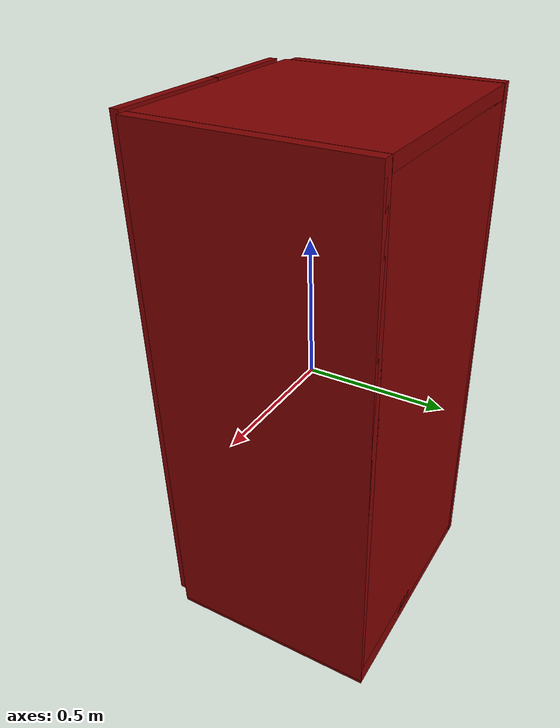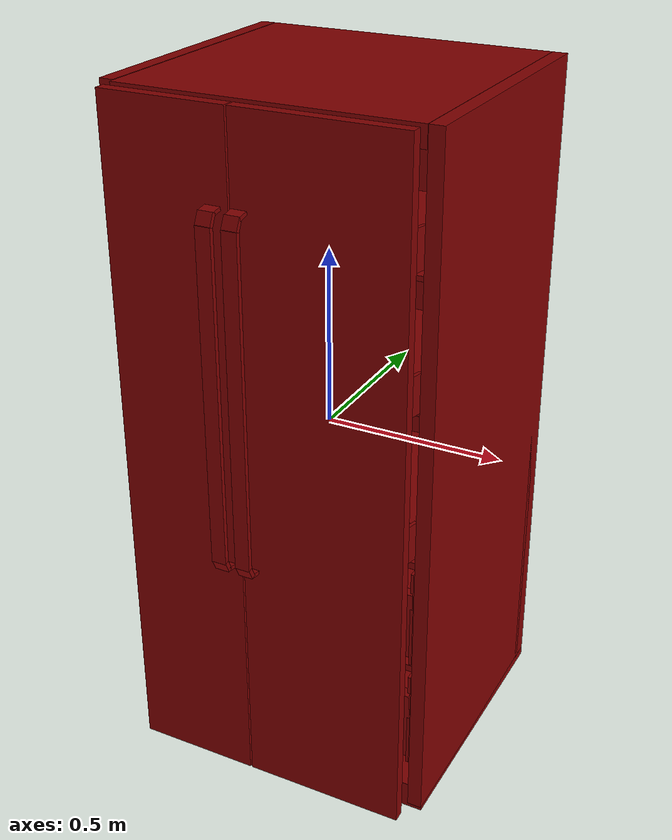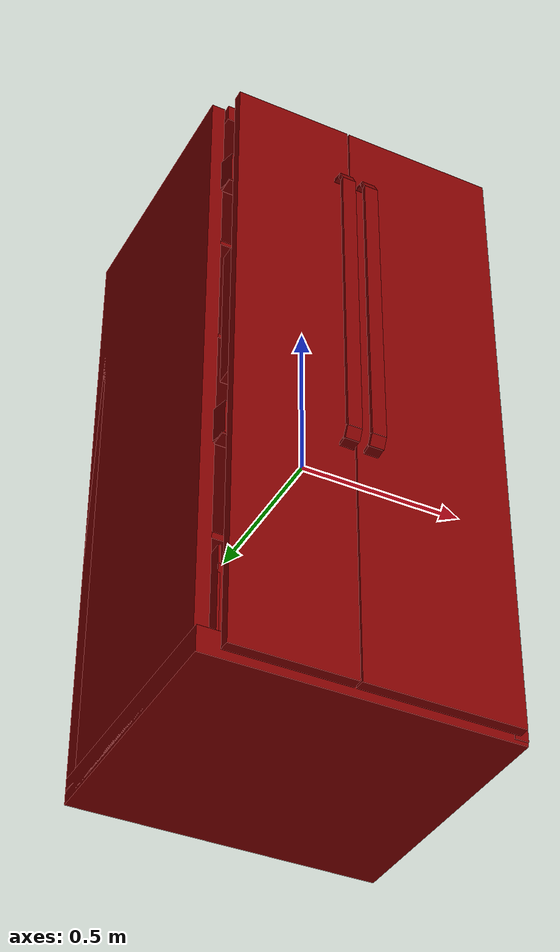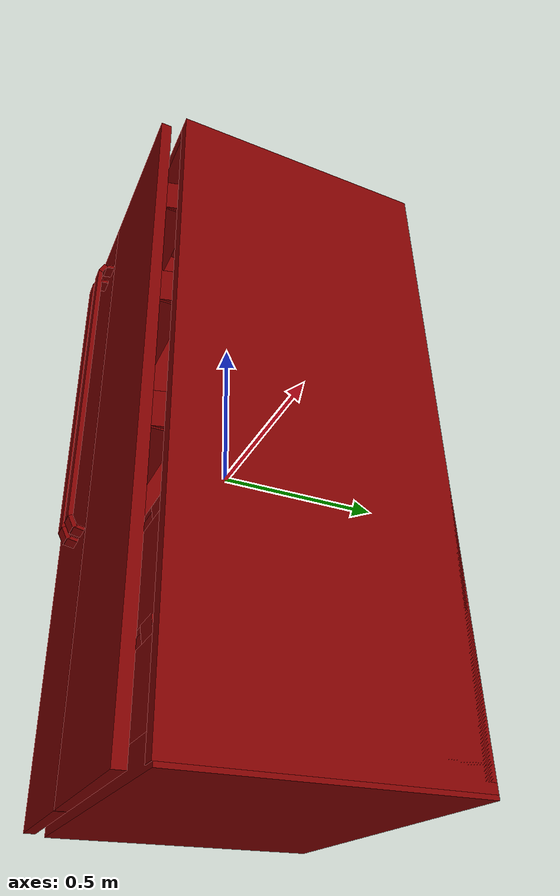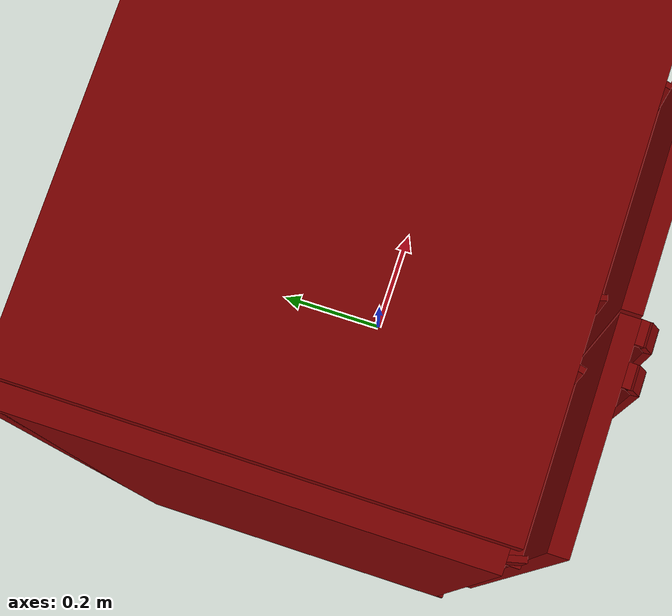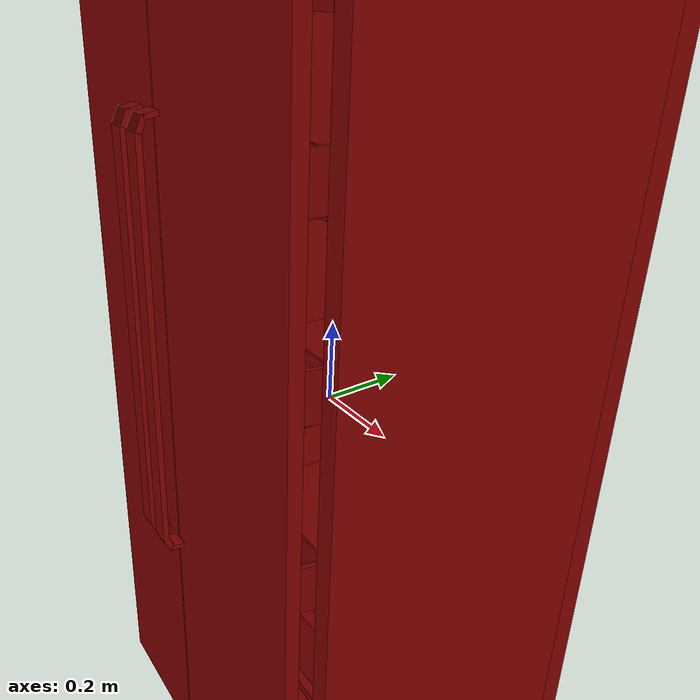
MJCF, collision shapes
<?xml version='1.0' encoding='UTF-8'?>
<mujoco model="model">
  <option timestep="0.002" gravity="0.0 0.0 -9.81"/>
  <compiler angle="radian"/>
  <asset>
    <mesh file="visuals/freezer_door.obj" name="freezer_door_vis"/>
    <mesh file="visuals/freezer_door_Clear.obj" name="freezer_door_Clear_vis"/>
    <mesh file="visuals/freezer_drawer0.obj" name="freezer_drawer0_vis"/>
    <mesh file="visuals/fridge_door.obj" name="fridge_door_vis"/>
    <mesh file="visuals/fridge_door_Clear.obj" name="fridge_door_Clear_vis"/>
    <mesh file="visuals/fridge_drawer0.obj" name="fridge_drawer0_vis"/>
    <mesh file="visuals/fridge_drawer1.obj" name="fridge_drawer1_vis"/>
    <mesh file="visuals/Body001.obj" name="Body001_vis"/>
    <mesh file="visuals/Body001_Clear.obj" name="Body001_Clear_vis"/>
    <texture file="visuals/T_BC001.png" name="Body001_material" type="2d"/>
    <material name="Body001_material" rgba="1 1 1 1.0" texture="Body001_material" shininess="0.1" specular="5"/>
    <texture file="visuals/T_BC001.png" name="freezer_door_material" type="2d"/>
    <material name="freezer_door_material" rgba="1 1 1 1.0" texture="freezer_door_material" shininess="0.1" specular="5"/>
    <material name="freezer_door_Clear_material" rgba="0.5049749612808228 0.5049749612808228 0.5049749612808228 0.699999988079071" shininess="0.4472135901451111" specular="0.3103448502657381"/>
    <texture file="visuals/T_BC001.png" name="freezer_drawer0_material" type="2d"/>
    <material name="freezer_drawer0_material" rgba="1 1 1 1.0" texture="freezer_drawer0_material" shininess="0.1" specular="5"/>
    <texture file="visuals/T_BC001.png" name="fridge_door_material" type="2d"/>
    <material name="fridge_door_material" rgba="1 1 1 1.0" texture="fridge_door_material" shininess="0.1" specular="5"/>
    <material name="fridge_door_Clear_material" rgba="0.5049749612808228 0.5049749612808228 0.5049749612808228 0.699999988079071" shininess="0.4472135901451111" specular="0.3103448502657381"/>
    <material name="fridge_drawer0_material" rgba="0.5049749612808228 0.5049749612808228 0.5049749612808228 0.699999988079071" shininess="0.1" specular="1"/>
    <material name="fridge_drawer1_material" rgba="0.5049749612808228 0.5049749612808228 0.5049749612808228 0.699999988079071" shininess="0.1" specular="1"/>
    <material name="Body001_Clear_material" rgba="0.5049749612808228 0.5049749612808228 0.5049749612808228 0.699999988079071" shininess="0.4472135901451111" specular="0.3103448502657381"/>
  </asset>
  <default>
    <default class="visual">
      <geom conaffinity="0" contype="0" group="1" type="mesh"/>
    </default>
    <default class="collision">
      <geom group="0" rgba="0.5 0 0 0.5"/>
    </default>
    <default class="spawn">
      <geom group="0" rgba="1 1 1 0.5" contype="0" conaffinity="0"/>
      <site group="0" rgba="1 1 1 0.5"/>
    </default>
    <default class="region">
      <geom group="1" conaffinity="0" contype="0" rgba="0 1 0 0"/>
    </default>
  </default>
  <worldbody>
    <body>
      <body name="object">
        <geom mesh="Body001_vis" type="mesh" solimp="0.998 0.998 0.001" solref="0.001 1" friction="0.95 0.3 0.1" class="visual" material="Body001_material"/>
        <geom class="collision" type="box" pos="-0.4336509108543396 0.07142437249422073 0.005860745906829834" size="0.01959938555955887 0.3851611018180847 0.951562225818634" quat="1.0 0.0 0.0 0.0"/>
        <geom class="collision" type="box" pos="0.0008711601258255541 0.06280471384525299 0.9293645024299622" size="0.4111725389957428 0.39378076791763306 0.028058471158146858" quat="1.0 0.0 0.0 0.0"/>
        <geom class="collision" type="box" pos="0.4333297610282898 0.06280471384525299 0.005860745906829834" size="0.01992054469883442 0.39378076791763306 0.951562225818634" quat="1.0 0.0 0.0 0.0"/>
        <geom class="collision" type="box" pos="0.18989431858062744 0.07100318372249603 -0.21668130159378052" size="0.2254139482975006 0.3264940679073334 0.009871868416666985" quat="1.0 0.0 0.0 0.0"/>
        <geom class="collision" type="box" pos="0.18992270529270172 0.07178407907485962 -0.5463895201683044" size="0.22557882964611053 0.32727494835853577 0.009871752001345158" quat="1.0 0.0 0.0 0.0"/>
        <geom class="collision" type="box" pos="0.0 0.06406276673078537 -0.9194051623344421" size="0.4532502591609955 0.3925227224826813 0.038017868995666504" quat="1.0 0.0 0.0 0.0"/>
        <geom class="collision" type="box" pos="0.0 0.4266170263290405 -0.004701931495219469" size="0.4532502591609955 0.029968474060297012 0.9156023263931274" quat="1.0 0.0 0.0 0.0"/>
        <geom class="collision" type="box" pos="0.19020572304725647 0.10726486891508102 0.5469508767127991" size="0.2314845770597458 0.2994402348995209 0.00704612722620368" quat="1.0 0.0 0.0 0.0"/>
        <geom class="collision" type="box" pos="0.19020572304725647 0.10726486891508102 0.18934525549411774" size="0.2314845770597458 0.2994402348995209 0.0070462035946547985" quat="1.0 0.0 0.0 0.0"/>
        <geom class="collision" type="box" pos="-0.06068806350231171 0.04241957142949104 0.005115657113492489" size="0.023796552792191505 0.3735535442829132 0.903842031955719" quat="1.0 0.0 0.0 0.0"/>
        <geom class="collision" type="box" pos="-0.25126656889915466 0.10726486891508102 0.18934530019760132" size="0.1690792590379715 0.2994402348995209 0.007046247832477093" quat="1.0 0.0 0.0 0.0"/>
        <geom class="collision" type="box" pos="-0.25126656889915466 0.10726486891508102 0.5469508767127991" size="0.1690792590379715 0.2994402348995209 0.00704612722620368" quat="1.0 0.0 0.0 0.0"/>
        <geom class="collision" type="box" pos="-0.2515495717525482 0.07178407907485962 -0.5463895201683044" size="0.16317349672317505 0.32727494835853577 0.009871752932667732" quat="1.0 0.0 0.0 0.0"/>
        <geom class="collision" type="box" pos="-0.2515779435634613 0.07100318372249603 -0.21668130159378052" size="0.16300861537456512 0.3264940679073334 0.009871868416666985" quat="1.0 0.0 0.0 0.0"/>
        <body name="freezer_door">
          <joint axis="0.0 0.0 -1.0" pos="-0.4158991277217865 -0.3749711811542511 0.03443636745214462" limited="true" name="freezer_door_joint" range="0.0 1.5707963267948966" type="hinge" damping="1" frictionloss="1" armature=".01" stiffness="0.05"/>
          <geom mesh="freezer_door_vis" type="mesh" solimp="0.998 0.998 0.001" solref="0.001 1" friction="0.95 0.3 0.1" class="visual" material="freezer_door_material"/>
          <geom class="collision" type="box" pos="-0.22952668368816376 -0.37857627868652344 -2.8172507882118225e-08" size="0.17517361044883728 0.015965711325407028 0.9573748707771301" quat="1.0 0.0 0.0 0.0" name="freezer_door_main"/>
          <geom class="collision" type="box" pos="-0.2493261992931366 -0.3175674378871918 0.18050585687160492" size="0.13233940303325653 0.05310049653053284 0.22756223380565643" quat="1.0 0.0 0.0 0.0"/>
          <geom class="collision" type="box" pos="-0.08697254955768585 -0.44984424114227295 0.2288431078195572" size="0.020951420068740845 0.006678369361907244 0.45927706360816956" quat="1.0 0.0 0.0 0.0" name="freezer_door_handle_main"/>
          <geom class="collision" type="box" pos="-0.08697254955768585 -0.44216039776802063 0.7020946145057678" size="0.0209524966776371 0.006460898090153933 0.01777993142604828" quat="0.9747755527496338 -0.2231874018907547 4.9557561785799263e-17 3.0003551446394067e-24" name="freezer_door_handle_2"/>
          <geom class="collision" type="box" pos="-0.08697254955768585 -0.4228537976741791 0.7165284752845764" size="0.0209524966776371 0.005356388632208109 0.015140105970203876" quat="0.7742652297019958 -0.6328612565994263 1.4052342769397847e-16 4.34011125700525e-22" name="freezer_door_handle_1"/>
          <geom class="collision" type="box" pos="-0.08697254955768585 -0.4228537976741791 -0.25753432512283325" size="0.0209524966776371 0.005356388632208109 0.015140105970203876" quat="3.0792154603886956e-08 -8.162389519839053e-08 -0.6328612565994263 0.7742652297019958" name="freezer_door_handle_4"/>
          <geom class="collision" type="box" pos="-0.08697254955768585 -0.44216039776802063 -0.24310053884983063" size="0.0209524966776371 0.006460897624492645 0.01777992956340313" quat="7.35935046236591e-08 -1.685018169439445e-08 -0.2231873869895935 0.9747755527496338" name="freezer_door_handle_3"/>
          <geom class="collision" type="box" pos="-0.4107002913951874 -0.3392782509326935 0.6696896553039551" size="0.023360518738627434 0.005456980783492327 0.05299126356840134" quat="0.6175482273101807 0.0 0.0 0.786532998085022"/>
          <geom class="collision" type="box" pos="-0.09666810184717178 -0.34024566411972046 0.6696896553039551" size="0.02236468531191349 0.005456981249153614 0.05299126356840134" quat="0.6175482273101807 0.0 -0.0 -0.7865330576896667"/>
          <geom class="collision" type="box" pos="-0.2554700970649719 -0.3181689381599426 0.6615341901779175" size="0.15932269394397736 0.0020894098561257124 0.044834695756435394" quat="1.0 0.0 0.0 0.0"/>
          <geom class="collision" type="box" pos="-0.25664809346199036 -0.34008705615997314 0.6140055656433105" size="0.15955737233161926 0.02449589967727661 0.002437988994643092" quat="1.0 0.0 0.0 0.0"/>
          <geom class="collision" type="box" pos="-0.25664809346199036 -0.34008705615997314 -0.30767011642456055" size="0.15955732762813568 0.024496091529726982 0.002438001101836562" quat="1.0 0.0 0.0 0.0"/>
          <geom class="collision" type="box" pos="-0.2554700970649719 -0.3181689381599426 -0.26014143228530884" size="0.1593225598335266 0.0020894461777061224 0.044835273176431656" quat="1.0 0.0 0.0 0.0"/>
          <geom class="collision" type="box" pos="-0.09666810184717178 -0.34024566411972046 -0.251986026763916" size="0.02236468531191349 0.005456981249153614 0.05299126356840134" quat="0.6175482273101807 0.0 -0.0 -0.7865330576896667"/>
          <geom class="collision" type="box" pos="-0.4107002913951874 -0.3392782509326935 -0.251986026763916" size="0.023360518738627434 0.005456980783492327 0.05299126356840134" quat="0.6175482273101807 0.0 0.0 0.786532998085022"/>
          <body name="freezer_door_Clear">
            <geom mesh="freezer_door_Clear_vis" type="mesh" solimp="0.998 0.998 0.001" solref="0.001 1" friction="0.95 0.3 0.1" class="visual" material="freezer_door_Clear_material"/>
            <geom class="collision" type="box" pos="-0.4107002913951874 -0.3392782509326935 0.6696896553039551" size="0.023360518738627434 0.005456980783492327 0.05299126356840134" quat="0.6175482273101807 0.0 0.0 0.786532998085022"/>
            <geom class="collision" type="box" pos="-0.09666810184717178 -0.34024566411972046 0.6696896553039551" size="0.02236468531191349 0.005456981249153614 0.05299126356840134" quat="0.6175482273101807 0.0 -0.0 -0.7865330576896667"/>
            <geom class="collision" type="box" pos="-0.2554700970649719 -0.3181689381599426 0.6615341901779175" size="0.15932269394397736 0.0020894098561257124 0.044834695756435394" quat="1.0 0.0 0.0 0.0"/>
            <geom class="collision" type="box" pos="-0.25664809346199036 -0.34008705615997314 0.6140055656433105" size="0.15955737233161926 0.02449589967727661 0.002437988994643092" quat="1.0 0.0 0.0 0.0"/>
            <geom class="collision" type="box" pos="-0.25664809346199036 -0.34008705615997314 -0.30767011642456055" size="0.15955732762813568 0.024496091529726982 0.002438001101836562" quat="1.0 0.0 0.0 0.0"/>
            <geom class="collision" type="box" pos="-0.2554700970649719 -0.3181689381599426 -0.26014143228530884" size="0.1593225598335266 0.0020894461777061224 0.044835273176431656" quat="1.0 0.0 0.0 0.0"/>
            <geom class="collision" type="box" pos="-0.09666810184717178 -0.34024566411972046 -0.251986026763916" size="0.02236468531191349 0.005456981249153614 0.05299126356840134" quat="0.6175482273101807 0.0 -0.0 -0.7865330576896667"/>
            <geom class="collision" type="box" pos="-0.4107002913951874 -0.3392782509326935 -0.251986026763916" size="0.023360518738627434 0.005456980783492327 0.05299126356840134" quat="0.6175482273101807 0.0 0.0 0.786532998085022"/>
          </body>
        </body>
        <body name="freezer_drawer0">
          <geom class="region" name="reg_freezer_drawer0" type="box" pos="-0.23276151344180107 0.06878168135881424 -0.708159327507019" size="0.13132253459095955 0.28656256741285324 0.12310464477539063"/>
          <joint axis="0.0 -1.0 0.0" pos="-0.23315663635730743 0.05941178649663925 -0.7227071523666382" limited="true" name="freezer_drawer0_joint" range="0.0 0.5" type="slide" damping="1" frictionloss="1" armature=".01" stiffness="0.05"/>
          <geom mesh="freezer_drawer0_vis" type="mesh" solimp="0.998 0.998 0.001" solref="0.001 1" friction="0.95 0.3 0.1" class="visual" material="freezer_drawer0_material"/>
          <geom class="collision" type="box" pos="-0.23764574527740479 0.37379565834999084 -0.7208192944526672" size="0.14151787757873535 0.01361861452460289 0.14073070883750916" quat="1.0 0.0 0.0 0.0"/>
          <geom class="collision" type="box" pos="-0.37139463424682617 0.04600770026445389 -0.7208192944526672" size="0.003381592920050025 0.31461143493652344 0.1407313048839569" quat="1.0 0.0 0.0 0.0"/>
          <geom class="collision" type="box" pos="-0.09642559289932251 0.04600770026445389 -0.7208192944526672" size="0.005373870488256216 0.3146124482154846 0.14073188602924347" quat="1.0 0.0 0.0 0.0"/>
          <geom class="collision" type="box" pos="-0.2331688404083252 -0.2452944964170456 -0.7491593956947327" size="0.14153273403644562 0.010633714497089386 0.11301939934492111" quat="0.9973334074020386 0.0729803591966629 1.620489502510989e-17 -2.3091398366971044e-24"/>
          <geom class="collision" type="box" pos="-0.2331688404083252 0.07289069890975952 -0.8503612875938416" size="0.1415194272994995 0.3118961453437805 0.014215292409062386" quat="1.0 0.0 0.0 0.0"/>
          <geom class="collision" type="box" pos="-0.2325924187898636 -0.25906726717948914 -0.6081632375717163" size="0.028483493253588676 0.009644811041653156 0.02576250396668911" quat="0.9973334074020386 0.0729803591966629 1.620489502510989e-17 -2.3091398366971044e-24"/>
        </body>
        <body name="fridge_door">
          <joint axis="0.0 0.0 1.0" pos="0.4179718792438507 -0.3749711811542511 0.03443636745214462" limited="true" name="fridge_door_joint" range="0.0 1.5707963267948966" type="hinge" damping="1" frictionloss="1" armature=".01" stiffness="0.05"/>
          <geom mesh="fridge_door_vis" type="mesh" solimp="0.998 0.998 0.001" solref="0.001 1" friction="0.95 0.3 0.1" class="visual" material="fridge_door_material"/>
          <geom class="collision" type="box" pos="0.18017582595348358 -0.3785761892795563 1.6065314412117004e-08" size="0.22909240424633026 0.015965929254889488 0.9573834538459778" quat="1.0 0.0 0.0 0.0" name="fridge_door_main"/>
          <geom class="collision" type="box" pos="-0.016205351799726486 -0.44216039776802063 -0.24310053884983063" size="0.0209524966776371 0.006460897624492645 0.01777992956340313" quat="7.35935046236591e-08 -1.685018169439445e-08 -0.2231873869895935 0.9747755527496338" name="fridge_door_handle_3"/>
          <geom class="collision" type="box" pos="-0.016205351799726486 -0.4228537976741791 -0.25753432512283325" size="0.0209524966776371 0.005356388632208109 0.015140105970203876" quat="3.0792154603886956e-08 -8.162389519839053e-08 -0.6328612565994263 0.7742652297019958" name="fridge_door_handle_4"/>
          <geom class="collision" type="box" pos="-0.016205351799726486 -0.4228537976741791 0.7165284752845764" size="0.0209524966776371 0.005356388632208109 0.015140105970203876" quat="0.7742652297019958 -0.6328612565994263 1.4052342769397847e-16 4.34011125700525e-22" name="fridge_door_handle_1"/>
          <geom class="collision" type="box" pos="-0.016205351799726486 -0.44216039776802063 0.7020946145057678" size="0.0209524966776371 0.006460898090153933 0.01777993142604828" quat="0.9747755527496338 -0.2231874018907547 4.9557561785799263e-17 3.0003551446394067e-24" name="fridge_door_handle_2"/>
          <geom class="collision" type="box" pos="-0.016205351799726486 -0.44984424114227295 0.2288431078195572" size="0.020951567217707634 0.006678418256342411 0.4592820107936859" quat="1.0 0.0 0.0 0.0" name="fridge_door_handle_main"/>
          <geom class="collision" type="box" pos="0.20179873704910278 -0.3233039677143097 -0.16130205988883972" size="0.18490783870220184 0.041277725249528885 0.002437910297885537" quat="1.0 0.0 0.0 0.0"/>
          <geom class="collision" type="box" pos="0.20287545025348663 -0.2867683470249176 -0.11377348005771637" size="0.1846933215856552 0.002089355606585741 0.044833824038505554" quat="1.0 0.0 0.0 0.0"/>
          <geom class="collision" type="box" pos="0.3897009491920471 -0.328563928604126 -0.10561805963516235" size="0.03406573086977005 0.004994058515876532 0.05299126356840134" quat="0.6175482273101807 0.0 -0.0 -0.7865330576896667"/>
          <geom class="collision" type="box" pos="0.012098237872123718 -0.328563928604126 -0.10561805963516235" size="0.03406573086977005 0.004994058515876532 0.05299126356840134" quat="0.6175482273101807 0.0 0.0 0.786532998085022"/>
          <geom class="collision" type="box" pos="0.012098237872123718 -0.328563928604126 0.30663272738456726" size="0.03406573086977005 0.004994058515876532 0.05299126356840134" quat="0.6175482273101807 0.0 0.0 0.786532998085022"/>
          <geom class="collision" type="box" pos="0.3897009491920471 -0.328563928604126 0.30663272738456726" size="0.03406573086977005 0.004994058515876532 0.05299126356840134" quat="0.6175482273101807 0.0 -0.0 -0.7865330576896667"/>
          <geom class="collision" type="box" pos="0.20287545025348663 -0.2867683470249176 0.29847729206085205" size="0.1846933215856552 0.002089367713779211 0.044834017753601074" quat="1.0 0.0 0.0 0.0"/>
          <geom class="collision" type="box" pos="0.20179873704910278 -0.3233039677143097 0.2509487271308899" size="0.18490783870220184 0.041278306394815445 0.002437946619465947" quat="1.0 0.0 0.0 0.0"/>
          <geom class="collision" type="box" pos="0.20287545025348663 -0.2867683470249176 0.6615341901779175" size="0.1846933215856552 0.002089397981762886 0.044834502041339874" quat="1.0 0.0 0.0 0.0"/>
          <geom class="collision" type="box" pos="0.3897009491920471 -0.328563928604126 0.6696895956993103" size="0.03406573086977005 0.004994058515876532 0.05299126356840134" quat="0.6175482273101807 0.0 -0.0 -0.7865330576896667"/>
          <geom class="collision" type="box" pos="0.012098237872123718 -0.328563928604126 0.6696895956993103" size="0.03406573086977005 0.004994058515876532 0.05299126356840134" quat="0.6175482273101807 0.0 0.0 0.786532998085022"/>
          <geom class="collision" type="box" pos="0.20179873704910278 -0.3233039677143097 0.6142440438270569" size="0.18490783870220184 0.04127928987145424 0.0024380080867558718" quat="1.0 0.0 0.0 0.0"/>
          <body name="fridge_door_Clear">
            <geom mesh="fridge_door_Clear_vis" type="mesh" solimp="0.998 0.998 0.001" solref="0.001 1" friction="0.95 0.3 0.1" class="visual" material="fridge_door_Clear_material"/>
            <geom class="collision" type="box" pos="0.20179873704910278 -0.3233039677143097 -0.16130205988883972" size="0.18490783870220184 0.041277725249528885 0.002437910297885537" quat="1.0 0.0 0.0 0.0"/>
            <geom class="collision" type="box" pos="0.20287545025348663 -0.2867683470249176 -0.11377348005771637" size="0.1846933215856552 0.002089355606585741 0.044833824038505554" quat="1.0 0.0 0.0 0.0"/>
            <geom class="collision" type="box" pos="0.3897009491920471 -0.328563928604126 -0.10561805963516235" size="0.03406573086977005 0.004994058515876532 0.05299126356840134" quat="0.6175482273101807 0.0 -0.0 -0.7865330576896667"/>
            <geom class="collision" type="box" pos="0.012098237872123718 -0.328563928604126 -0.10561805963516235" size="0.03406573086977005 0.004994058515876532 0.05299126356840134" quat="0.6175482273101807 0.0 0.0 0.786532998085022"/>
            <geom class="collision" type="box" pos="0.012098237872123718 -0.328563928604126 0.30663272738456726" size="0.03406573086977005 0.004994058515876532 0.05299126356840134" quat="0.6175482273101807 0.0 0.0 0.786532998085022"/>
            <geom class="collision" type="box" pos="0.3897009491920471 -0.328563928604126 0.30663272738456726" size="0.03406573086977005 0.004994058515876532 0.05299126356840134" quat="0.6175482273101807 0.0 -0.0 -0.7865330576896667"/>
            <geom class="collision" type="box" pos="0.20287545025348663 -0.2867683470249176 0.29847729206085205" size="0.1846933215856552 0.002089367713779211 0.044834017753601074" quat="1.0 0.0 0.0 0.0"/>
            <geom class="collision" type="box" pos="0.20179873704910278 -0.3233039677143097 0.2509487271308899" size="0.18490783870220184 0.041278306394815445 0.002437946619465947" quat="1.0 0.0 0.0 0.0"/>
            <geom class="collision" type="box" pos="0.20287545025348663 -0.2867683470249176 0.6615341901779175" size="0.1846933215856552 0.002089397981762886 0.044834502041339874" quat="1.0 0.0 0.0 0.0"/>
            <geom class="collision" type="box" pos="0.3897009491920471 -0.328563928604126 0.6696895956993103" size="0.03406573086977005 0.004994058515876532 0.05299126356840134" quat="0.6175482273101807 0.0 -0.0 -0.7865330576896667"/>
            <geom class="collision" type="box" pos="0.012098237872123718 -0.328563928604126 0.6696895956993103" size="0.03406573086977005 0.004994058515876532 0.05299126356840134" quat="0.6175482273101807 0.0 0.0 0.786532998085022"/>
            <geom class="collision" type="box" pos="0.20179873704910278 -0.3233039677143097 0.6142440438270569" size="0.18490783870220184 0.04127928987145424 0.0024380080867558718" quat="1.0 0.0 0.0 0.0"/>
          </body>
        </body>
        <body name="fridge_drawer0">
          <geom class="region" name="reg_fridge_drawer0" type="box" pos="0.18744573183357716 0.06903768330812454 -0.6977756321430206" size="0.18458713202178478 0.28553611582517624 0.1260116527080536"/>
          <joint axis="0.0 -1.0 0.0" pos="0.18617576360702515 0.054700817912817 -0.7112010717391968" limited="true" name="fridge_drawer0_joint" range="0.0 0.5" type="slide" damping="1" frictionloss="1" armature=".01" stiffness="0.05"/>
          <geom mesh="fridge_drawer0_vis" type="mesh" solimp="0.998 0.998 0.001" solref="0.001 1" friction="0.95 0.3 0.1" class="visual" material="fridge_drawer0_material"/>
          <geom class="collision" type="box" pos="0.18611545860767365 0.07289069890975952 -0.8444443345069885" size="0.19797039031982422 0.3118944764137268 0.015889745205640793" quat="1.0 0.0 0.0 0.0"/>
          <geom class="collision" type="box" pos="0.18611545860767365 -0.24892817437648773 -0.7408733367919922" size="0.19797039031982422 0.014277408830821514 0.12235511094331741" quat="0.9973334074020386 0.0729803591966629 1.620489502510989e-17 -2.3091398366971044e-24"/>
          <geom class="collision" type="box" pos="0.3802013695240021 0.04548329859972 -0.7134981751441956" size="0.0040023066103458405 0.3140886425971985 0.1468329131603241" quat="1.0 0.0 0.0 0.0"/>
          <geom class="collision" type="box" pos="-0.0072292909026145935 0.04548329859972 -0.7134982943534851" size="0.004730665124952793 0.31408992409706116 0.14683295786380768" quat="1.0 0.0 0.0 0.0"/>
          <geom class="collision" type="box" pos="0.18611545860767365 0.3735070824623108 -0.7154293656349182" size="0.19797039031982422 0.01390751264989376 0.14490202069282532" quat="1.0 0.0 0.0 0.0"/>
          <geom class="collision" type="box" pos="0.1865462362766266 -0.26449257135391235 -0.590259313583374" size="0.042300209403038025 0.010199269279837608 0.027748608961701393" quat="0.9973334074020386 0.0729803591966629 1.620489502510989e-17 -2.3091398366971044e-24"/>
        </body>
        <body name="fridge_drawer1">
          <geom class="region" name="reg_fridge_drawer1" type="box" pos="0.18744573183357716 0.06903768330812454 -0.369435116648674" size="0.18458713202178478 0.28553611582517624 0.12201437151432037"/>
          <joint axis="0.0 -1.0 0.0" pos="0.18617573380470276 0.059411678463220596 -0.3822690546512604" limited="true" name="fridge_drawer1_joint" range="0.0 0.5" type="slide" damping="1" frictionloss="1" armature=".01" stiffness="0.05"/>
          <geom mesh="fridge_drawer1_vis" type="mesh" solimp="0.998 0.998 0.001" solref="0.001 1" friction="0.95 0.3 0.1" class="visual" material="fridge_drawer1_material"/>
          <geom class="collision" type="box" pos="0.18611545860767365 0.07289069890975952 -0.5103121995925903" size="0.19797039031982422 0.3118893802165985 0.013742916285991669" quat="1.0 0.0 0.0 0.0"/>
          <geom class="collision" type="box" pos="-0.0072292909026145935 0.04548329859972 -0.37871599197387695" size="0.004730665124952793 0.3140835464000702 0.14410553872585297" quat="1.0 0.0 0.0 0.0"/>
          <geom class="collision" type="box" pos="0.18611545860767365 0.3735070824623108 -0.37871599197387695" size="0.19797039031982422 0.013907114043831825 0.14410611987113953" quat="1.0 0.0 0.0 0.0"/>
          <geom class="collision" type="box" pos="0.18611545860767365 -0.24707546830177307 -0.4060402512550354" size="0.19797039031982422 0.012238709256052971 0.11461968719959259" quat="0.9973334074020386 0.0729803591966629 1.620489502510989e-17 -2.3091398366971044e-24"/>
          <geom class="collision" type="box" pos="0.3802013695240021 0.04548329859972 -0.37871599197387695" size="0.0040023066103458405 0.31408607959747314 0.14410671591758728" quat="1.0 0.0 0.0 0.0"/>
          <geom class="collision" type="box" pos="0.18721166253089905 -0.25738537311553955 -0.2646147310733795" size="0.03779461607336998 0.00974004901945591 0.02764425054192543" quat="0.9973334074020386 0.0729803591966629 1.620489502510989e-17 -2.3091398366971044e-24"/>
        </body>
        <body name="Body001_Clear">
          <geom mesh="Body001_Clear_vis" type="mesh" solimp="0.998 0.998 0.001" solref="0.001 1" friction="0.95 0.3 0.1" class="visual" material="Body001_Clear_material"/>
          <geom class="collision" type="box" pos="0.18989431858062744 0.07100318372249603 -0.21668130159378052" size="0.2254139482975006 0.3264940679073334 0.009871868416666985" quat="1.0 0.0 0.0 0.0"/>
          <geom class="collision" type="box" pos="0.18992270529270172 0.07178407907485962 -0.5463895201683044" size="0.22557882964611053 0.32727494835853577 0.009871752001345158" quat="1.0 0.0 0.0 0.0"/>
          <geom class="collision" type="box" pos="0.19020572304725647 0.10726486891508102 0.5469508767127991" size="0.2314845770597458 0.2994402348995209 0.00704612722620368" quat="1.0 0.0 0.0 0.0"/>
          <geom class="collision" type="box" pos="0.19020572304725647 0.10726486891508102 0.18934525549411774" size="0.2314845770597458 0.2994402348995209 0.0070462035946547985" quat="1.0 0.0 0.0 0.0"/>
        </body>
        <geom class="region" name="reg_freezer_shelf3" type="box" pos="-0.2492235079407692 0.10225343704223633 0.7272698283195496" size="0.16024998372793198 0.29014791345596314 0.1692928204536438"/>
        <geom class="region" name="reg_freezer_shelf2" type="box" pos="-0.2492235079407692 0.10225343704223633 0.36784521490335464" size="0.16024998372793198 0.29014791345596314 0.16683063453435898"/>
        <geom class="region" name="reg_freezer_shelf0" type="box" pos="-0.2492235079407692 0.07069994509220123 -0.3812413588166237" size="0.16024998372793198 0.32170140540599823 0.15031263774633408"/>
        <geom class="region" name="reg_freezer_shelf1" type="box" pos="-0.2492235079407692 0.07127866894006729 -0.011902682483196259" size="0.16024998372793198 0.3211226815581322 0.18958305364847183"/>
        <geom class="region" name="reg_fridge_shelf0" type="box" pos="0.18863594997674227 0.07123982161283493 -0.011581391096115112" size="0.22062552797049284 0.3210838342308998 0.18942270970344544"/>
        <geom class="region" name="reg_fridge_shelf1" type="box" pos="0.18863594997674227 0.10213213413953781 0.36795515567064285" size="0.22062552797049284 0.2899951542019844 0.1669485623240471"/>
        <geom class="region" name="reg_fridge_shelf2" type="box" pos="0.18863594997674227 0.10226883739233017 0.7273935675621033" size="0.22062552797049284 0.29013185745477676 0.169634295463562"/>
        <geom class="region" name="reg_main" type="box" pos="0.0 0.02444198727607727 0.0" size="0.45425028896331787 0.4331434795856476 0.9584230313301086"/>
      </body>
    </body>
  </worldbody>
  <actuator>
    <motor name="freezer_door_joint_actuator" joint="freezer_door_joint" gear="50"/>
    <motor name="freezer_drawer0_joint_actuator" joint="freezer_drawer0_joint" gear="50"/>
    <motor name="fridge_door_joint_actuator" joint="fridge_door_joint" gear="50"/>
    <motor name="fridge_drawer0_joint_actuator" joint="fridge_drawer0_joint" gear="50"/>
    <motor name="fridge_drawer1_joint_actuator" joint="fridge_drawer1_joint" gear="50"/>
  </actuator>
</mujoco>
